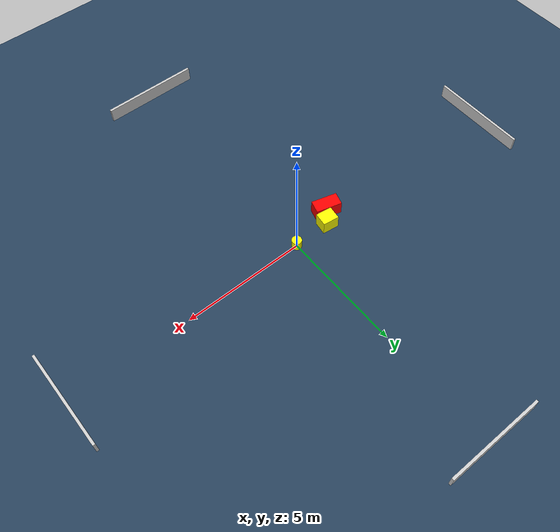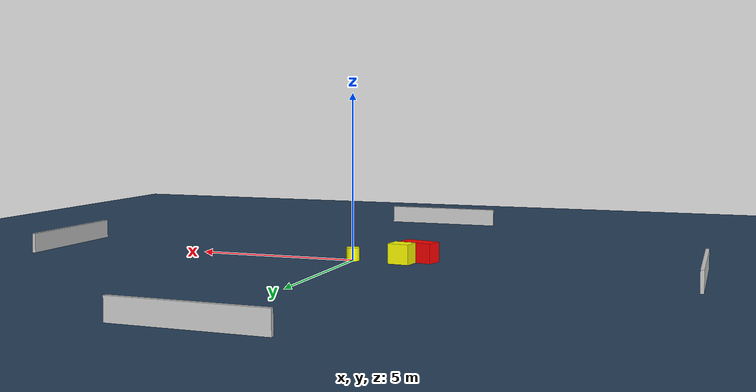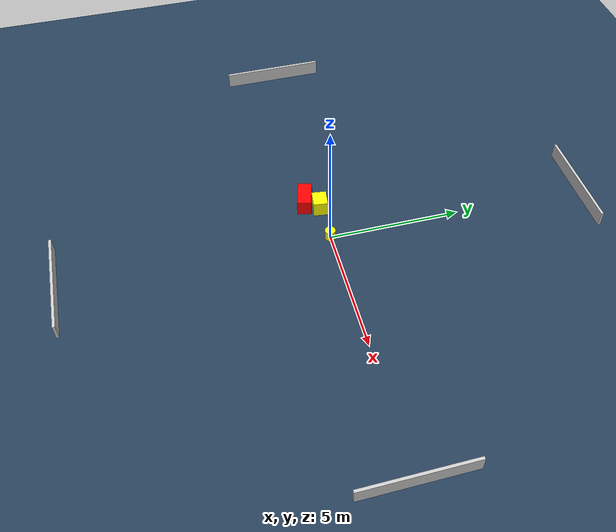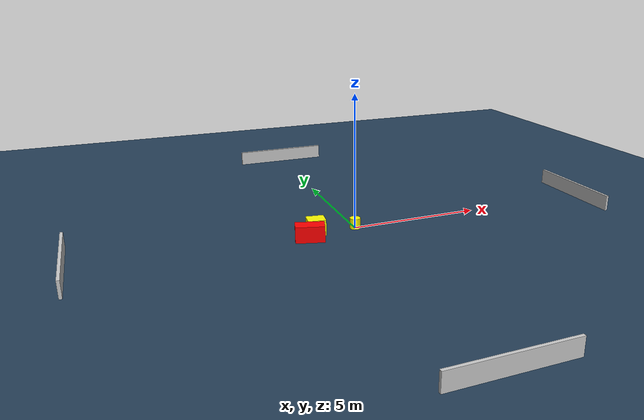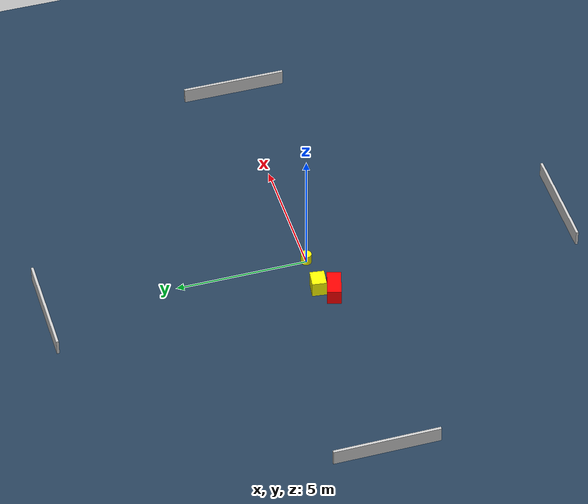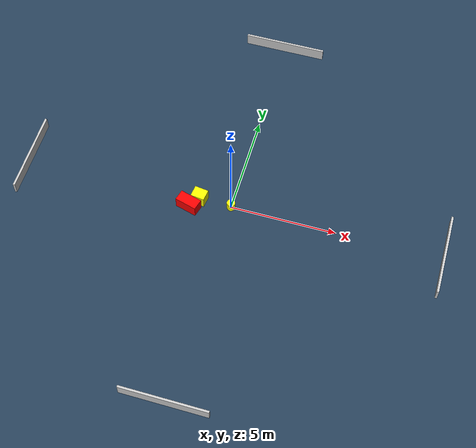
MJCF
<?xml version="1.0" ?>
<mujoco model="generated_environment">
  <option timestep="0.01" integrator="RK4" cone="elliptic"/>
  <default>
    <geom density="1"/>
  </default>
  <asset>
    <texture builtin="gradient" height="3072" name="skybox" rgb1="0.3 0.5 0.7" rgb2="0 0 0" type="skybox" width="512"/>
    <texture builtin="checker" height="300" name="groundplane" rgb1="0.2 0.3 0.4" rgb2="0.1 0.2 0.3" type="2d" width="300"/>
    <material name="groundplane" reflectance="0.2" texrepeat="5 5" texture="groundplane"/>
  </asset>
  <worldbody>
    <light dir="0 0 -1" directional="true" pos="0 0 1.5"/>
    <geom condim="3" friction="0.5 0.005 0.001" material="groundplane" name="floor" pos="0 0 0" size="0 0 0.05" type="plane"/>
    <body name="walls">
      <geom name="wall_1" condim="4" pos="-10.0 0.0 0.3" rgba="0.800000011920929 0.800000011920929 0.800000011920929 1.0" size="0.05 2.0 0.3" type="box"/>
      <geom name="wall_2" condim="4" pos="10.0 0.0 0.3" rgba="0.800000011920929 0.800000011920929 0.800000011920929 1.0" size="0.05 2.0 0.3" type="box"/>
      <geom name="wall_3" condim="4" pos="0.0 -10.0 0.3" rgba="0.800000011920929 0.800000011920929 0.800000011920929 1.0" size="2.0 0.05 0.3" type="box"/>
      <geom name="wall_4" condim="4" pos="0.0 10.0 0.3" rgba="0.800000011920929 0.800000011920929 0.800000011920929 1.0" size="2.0 0.05 0.3" type="box"/>
    </body>
    <body name="robot">
      <joint name="joint_x" type="slide" pos="0 0 0" axis="1 0 0"/>
      <joint name="joint_y" type="slide" pos="0 0 0" axis="0 1 0"/>
      <geom name="robot" type="cylinder" pos="0.0 0.0 0.2" size="0.2 0.2 0.0" mass="5.0" friction="1.0 0.005 0.0001" condim="4" rgba="1.0 1.0 0.0 1.0"/>
    </body>
    <body name="obstacle_1_movable">
      <geom name="obstacle_1_movable" condim="4" pos="-1.5282769596758368 -0.00526502008410496 0.3" euler="0 0 262.4148104304363" friction="0.0 0.005 0.001" rgba="1.0 1.0 0.0 1.0" size="0.27425151054666186 0.3298604076285525 0.3" type="box" mass="0.1"/>
      <joint type="free"/>
    </body>
    <body name="obstacle_2_static">
      <geom name="obstacle_2_static" condim="4" pos="-1.918300259263952 -0.5053655131447545 0.3" euler="0 0 74.42864986039032" friction="0.0 0.005 0.001" rgba="1.0 0.0 0.0 1.0" size="0.2644716024343362 0.5260237700627353 0.3" type="box"/>
    </body>
  </worldbody>
  <actuator>
    <motor name="actuator_x" joint="joint_x" gear="1" ctrlrange="-1 1"/>
    <motor name="actuator_y" joint="joint_y" gear="1" ctrlrange="-1 1"/>
  </actuator>
</mujoco>
